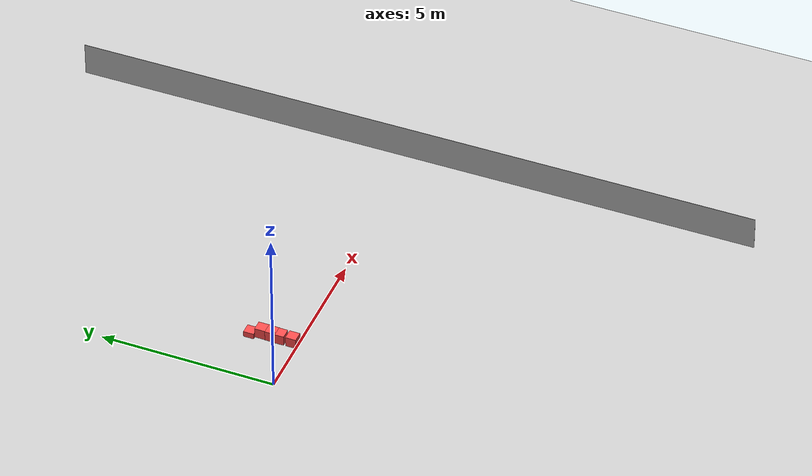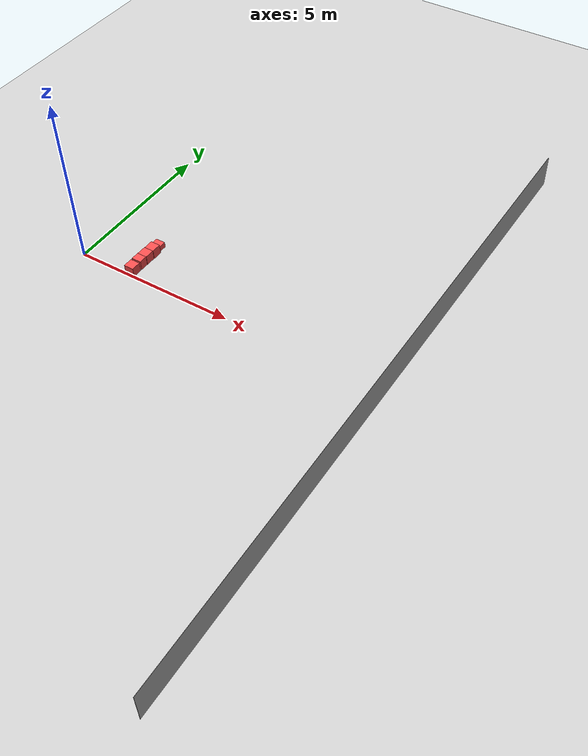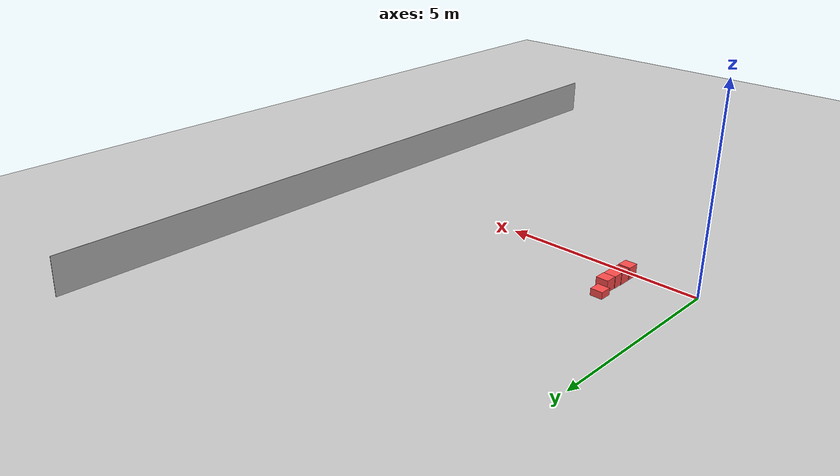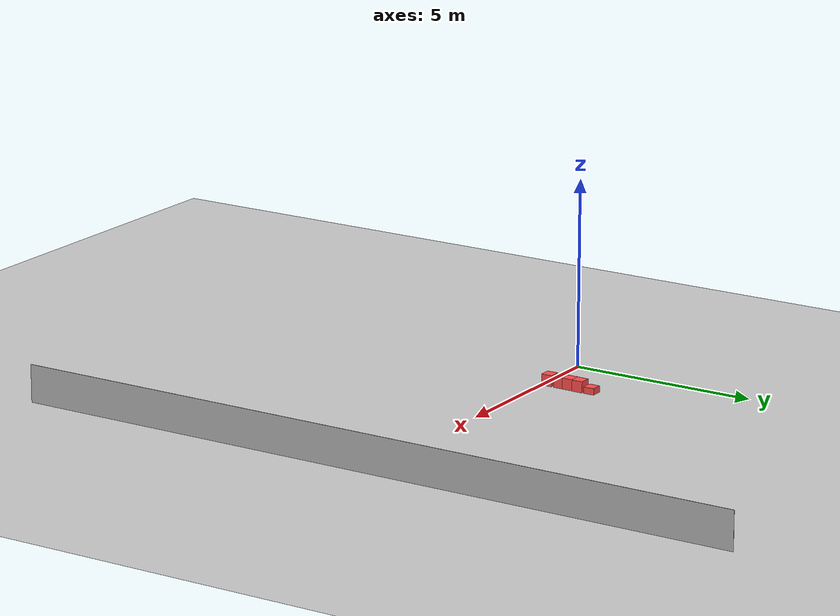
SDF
<sdf version="1.10">
 <world name="default">
  <model name="ground_plane">
   <static>true</static>
   <link name="link">
    <collision name="collision">
     <geometry><plane><normal>0 0 1</normal><size>1 1</size></plane></geometry>
    </collision>
    <visual name="visual">
     <geometry><plane><normal>0 0 1</normal><size>100 100</size></plane></geometry>
     <material>
      <ambient>0.800000012 0.800000012 0.800000012 1</ambient>
      <diffuse>0.800000012 0.800000012 0.800000012 1</diffuse>
      <specular>0.800000012 0.800000012 0.800000012 1</specular>
     </material>
    </visual>
    <inertial>
     <mass>1</mass>
     <inertia><ixx>1</ixx><ixy>0</ixy><ixz>0</ixz><iyy>1</iyy><iyz>0</iyz><izz>1</izz></inertia>
    </inertial>
   </link>
  </model>
  <model name="wall_2">
   <pose>10 0 .5 0 0 -1.57</pose>
   <static>true</static>
   <link name="link">
    <collision name="collision"><geometry><box><size>20 .01 1</size></box></geometry></collision>
    <visual name="visual">
     <geometry><box><size>20 .01 1</size></box></geometry>
     <material>
      <ambient>0.7 0.7 0.7 1</ambient>
      <diffuse>0.7 0.7 0.7 1</diffuse>
      <specular>0.7 0.7 0.7 1</specular>
     </material>
    </visual>
    <inertial>
     <mass>1</mass>
     <inertia><ixx>1</ixx><ixy>0</ixy><ixz>0</ixz><iyy>1</iyy><iyz>0</iyz><izz>1</izz></inertia>
    </inertial>
   </link>
  </model>
  <model name="Box_Red">
   <link name="link_0">
    <inertial>
     <mass>1</mass>
     <inertia>
      <ixx>0.166667</ixx>
      <ixy>0</ixy>
      <ixz>0</ixz>
      <iyy>0.166667</iyy>
      <iyz>0</iyz>
      <izz>0.166667</izz>
     </inertia>
    </inertial>
    <visual name="visual">
     <geometry><box><size>0.3 0.3 0.3</size></box></geometry>
     <material>
      <lighting>1</lighting>
      <script><uri>file://media/materials/scripts/gazebo.material</uri><name>Gazebo/Grey</name></script>
      <ambient>1 0.3 0.3 1</ambient>
      <diffuse>0.7 0.7 0.7 1</diffuse>
      <specular>0.01 0.01 0.01 1</specular>
      <emissive>0 0 0 1</emissive>
      <shader type="vertex"><normal_map>__default__</normal_map></shader>
     </material>
    </visual>
    <collision name="collision">
     <geometry><box><size>0.3 0.3 0.3</size></box></geometry>
     <surface>
      <friction>
       <ode><mu>1</mu><mu2>1</mu2><fdir1>0 0 0</fdir1><slip1>0</slip1><slip2>0</slip2></ode>
       <torsional>
        <coefficient>1</coefficient>
        <patch_radius>0</patch_radius>
        <surface_radius>0</surface_radius>
        <use_patch_radius>1</use_patch_radius>
        <ode><slip>0</slip></ode>
       </torsional>
      </friction>
      <bounce><restitution_coefficient>0</restitution_coefficient><threshold>1e+06</threshold></bounce>
      <contact>
       <collide_without_contact>0</collide_without_contact>
       <collide_without_contact_bitmask>1</collide_without_contact_bitmask>
       <collide_bitmask>1</collide_bitmask>
       <ode>
        <soft_cfm>0</soft_cfm>
        <soft_erp>0.2</soft_erp>
        <kp>1e+13</kp>
        <kd>1</kd>
        <max_vel>0.01</max_vel>
        <min_depth>0</min_depth>
       </ode>
       <bullet>
        <split_impulse>1</split_impulse>
        <split_impulse_penetration_threshold>-0.01</split_impulse_penetration_threshold>
        <soft_cfm>0</soft_cfm>
        <soft_erp>0.2</soft_erp>
        <kp>1e+13</kp>
        <kd>1</kd>
       </bullet>
      </contact>
     </surface>
    </collision>
   </link>
   <static>0</static>
   <pose>1.62991 1.35831 0 0 -0 0</pose>
  </model>
  <model name="Box_Red_clone">
   <link name="link_0">
    <inertial>
     <mass>1</mass>
     <inertia>
      <ixx>0.166667</ixx>
      <ixy>0</ixy>
      <ixz>0</ixz>
      <iyy>0.166667</iyy>
      <iyz>0</iyz>
      <izz>0.166667</izz>
     </inertia>
    </inertial>
    <visual name="visual">
     <geometry><box><size>0.3 0.3 0.3</size></box></geometry>
     <material>
      <lighting>1</lighting>
      <script><uri>file://media/materials/scripts/gazebo.material</uri><name>Gazebo/Grey</name></script>
      <ambient>1 0.3 0.3 1</ambient>
      <diffuse>0.7 0.7 0.7 1</diffuse>
      <specular>0.01 0.01 0.01 1</specular>
      <emissive>0 0 0 1</emissive>
      <shader type="vertex"><normal_map>__default__</normal_map></shader>
     </material>
    </visual>
    <collision name="collision">
     <geometry><box><size>0.3 0.3 0.3</size></box></geometry>
     <surface>
      <friction>
       <ode><mu>1</mu><mu2>1</mu2><fdir1>0 0 0</fdir1><slip1>0</slip1><slip2>0</slip2></ode>
       <torsional>
        <coefficient>1</coefficient>
        <patch_radius>0</patch_radius>
        <surface_radius>0</surface_radius>
        <use_patch_radius>1</use_patch_radius>
        <ode><slip>0</slip></ode>
       </torsional>
      </friction>
      <bounce><restitution_coefficient>0</restitution_coefficient><threshold>1e+06</threshold></bounce>
      <contact>
       <collide_without_contact>0</collide_without_contact>
       <collide_without_contact_bitmask>1</collide_without_contact_bitmask>
       <collide_bitmask>1</collide_bitmask>
       <ode>
        <soft_cfm>0</soft_cfm>
        <soft_erp>0.2</soft_erp>
        <kp>1e+13</kp>
        <kd>1</kd>
        <max_vel>0.01</max_vel>
        <min_depth>0</min_depth>
       </ode>
       <bullet>
        <split_impulse>1</split_impulse>
        <split_impulse_penetration_threshold>-0.01</split_impulse_penetration_threshold>
        <soft_cfm>0</soft_cfm>
        <soft_erp>0.2</soft_erp>
        <kp>1e+13</kp>
        <kd>1</kd>
       </bullet>
      </contact>
     </surface>
    </collision>
   </link>
   <static>0</static>
   <pose>1.69497 1.05811 0.149998 -7e-06 5e-06 9e-06</pose>
  </model>
  <model name="Box_Red_clone_0">
   <link name="link_0">
    <inertial>
     <mass>1</mass>
     <inertia>
      <ixx>0.166667</ixx>
      <ixy>0</ixy>
      <ixz>0</ixz>
      <iyy>0.166667</iyy>
      <iyz>0</iyz>
      <izz>0.166667</izz>
     </inertia>
    </inertial>
    <visual name="visual">
     <geometry><box><size>0.3 0.3 0.3</size></box></geometry>
     <material>
      <lighting>1</lighting>
      <script><uri>file://media/materials/scripts/gazebo.material</uri><name>Gazebo/Grey</name></script>
      <ambient>1 0.3 0.3 1</ambient>
      <diffuse>0.7 0.7 0.7 1</diffuse>
      <specular>0.01 0.01 0.01 1</specular>
      <emissive>0 0 0 1</emissive>
      <shader type="vertex"><normal_map>__default__</normal_map></shader>
     </material>
    </visual>
    <collision name="collision">
     <geometry><box><size>0.3 0.3 0.3</size></box></geometry>
     <surface>
      <friction>
       <ode><mu>1</mu><mu2>1</mu2><fdir1>0 0 0</fdir1><slip1>0</slip1><slip2>0</slip2></ode>
       <torsional>
        <coefficient>1</coefficient>
        <patch_radius>0</patch_radius>
        <surface_radius>0</surface_radius>
        <use_patch_radius>1</use_patch_radius>
        <ode><slip>0</slip></ode>
       </torsional>
      </friction>
      <bounce><restitution_coefficient>0</restitution_coefficient><threshold>1e+06</threshold></bounce>
      <contact>
       <collide_without_contact>0</collide_without_contact>
       <collide_without_contact_bitmask>1</collide_without_contact_bitmask>
       <collide_bitmask>1</collide_bitmask>
       <ode>
        <soft_cfm>0</soft_cfm>
        <soft_erp>0.2</soft_erp>
        <kp>1e+13</kp>
        <kd>1</kd>
        <max_vel>0.01</max_vel>
        <min_depth>0</min_depth>
       </ode>
       <bullet>
        <split_impulse>1</split_impulse>
        <split_impulse_penetration_threshold>-0.01</split_impulse_penetration_threshold>
        <soft_cfm>0</soft_cfm>
        <soft_erp>0.2</soft_erp>
        <kp>1e+13</kp>
        <kd>1</kd>
       </bullet>
      </contact>
     </surface>
    </collision>
   </link>
   <static>0</static>
   <pose>1.68581 0.758813 0.149998 -7e-06 5e-06 9e-06</pose>
  </model>
  <model name="Box_Red_clone_1">
   <link name="link_0">
    <inertial>
     <mass>1</mass>
     <inertia>
      <ixx>0.166667</ixx>
      <ixy>0</ixy>
      <ixz>0</ixz>
      <iyy>0.166667</iyy>
      <iyz>0</iyz>
      <izz>0.166667</izz>
     </inertia>
    </inertial>
    <visual name="visual">
     <geometry><box><size>0.3 0.3 0.3</size></box></geometry>
     <material>
      <lighting>1</lighting>
      <script><uri>file://media/materials/scripts/gazebo.material</uri><name>Gazebo/Grey</name></script>
      <ambient>1 0.3 0.3 1</ambient>
      <diffuse>0.7 0.7 0.7 1</diffuse>
      <specular>0.01 0.01 0.01 1</specular>
      <emissive>0 0 0 1</emissive>
      <shader type="vertex"><normal_map>__default__</normal_map></shader>
     </material>
    </visual>
    <collision name="collision">
     <geometry><box><size>0.3 0.3 0.3</size></box></geometry>
     <surface>
      <friction>
       <ode><mu>1</mu><mu2>1</mu2><fdir1>0 0 0</fdir1><slip1>0</slip1><slip2>0</slip2></ode>
       <torsional>
        <coefficient>1</coefficient>
        <patch_radius>0</patch_radius>
        <surface_radius>0</surface_radius>
        <use_patch_radius>1</use_patch_radius>
        <ode><slip>0</slip></ode>
       </torsional>
      </friction>
      <bounce><restitution_coefficient>0</restitution_coefficient><threshold>1e+06</threshold></bounce>
      <contact>
       <collide_without_contact>0</collide_without_contact>
       <collide_without_contact_bitmask>1</collide_without_contact_bitmask>
       <collide_bitmask>1</collide_bitmask>
       <ode>
        <soft_cfm>0</soft_cfm>
        <soft_erp>0.2</soft_erp>
        <kp>1e+13</kp>
        <kd>1</kd>
        <max_vel>0.01</max_vel>
        <min_depth>0</min_depth>
       </ode>
       <bullet>
        <split_impulse>1</split_impulse>
        <split_impulse_penetration_threshold>-0.01</split_impulse_penetration_threshold>
        <soft_cfm>0</soft_cfm>
        <soft_erp>0.2</soft_erp>
        <kp>1e+13</kp>
        <kd>1</kd>
       </bullet>
      </contact>
     </surface>
    </collision>
   </link>
   <static>0</static>
   <pose>1.67673 0.503162 0.149998 -7e-06 5e-06 9e-06</pose>
  </model>
  <model name="Box_Red_clone_2">
   <link name="link_0">
    <inertial>
     <mass>1</mass>
     <inertia>
      <ixx>0.166667</ixx>
      <ixy>0</ixy>
      <ixz>0</ixz>
      <iyy>0.166667</iyy>
      <iyz>0</iyz>
      <izz>0.166667</izz>
     </inertia>
    </inertial>
    <visual name="visual">
     <geometry><box><size>0.3 0.3 0.3</size></box></geometry>
     <material>
      <lighting>1</lighting>
      <script><uri>file://media/materials/scripts/gazebo.material</uri><name>Gazebo/Grey</name></script>
      <ambient>1 0.3 0.3 1</ambient>
      <diffuse>0.7 0.7 0.7 1</diffuse>
      <specular>0.01 0.01 0.01 1</specular>
      <emissive>0 0 0 1</emissive>
      <shader type="vertex"><normal_map>__default__</normal_map></shader>
     </material>
    </visual>
    <collision name="collision">
     <geometry><box><size>0.3 0.3 0.3</size></box></geometry>
     <surface>
      <friction>
       <ode><mu>1</mu><mu2>1</mu2><fdir1>0 0 0</fdir1><slip1>0</slip1><slip2>0</slip2></ode>
       <torsional>
        <coefficient>1</coefficient>
        <patch_radius>0</patch_radius>
        <surface_radius>0</surface_radius>
        <use_patch_radius>1</use_patch_radius>
        <ode><slip>0</slip></ode>
       </torsional>
      </friction>
      <bounce><restitution_coefficient>0</restitution_coefficient><threshold>1e+06</threshold></bounce>
      <contact>
       <collide_without_contact>0</collide_without_contact>
       <collide_without_contact_bitmask>1</collide_without_contact_bitmask>
       <collide_bitmask>1</collide_bitmask>
       <ode>
        <soft_cfm>0</soft_cfm>
        <soft_erp>0.2</soft_erp>
        <kp>1e+13</kp>
        <kd>1</kd>
        <max_vel>0.01</max_vel>
        <min_depth>0</min_depth>
       </ode>
       <bullet>
        <split_impulse>1</split_impulse>
        <split_impulse_penetration_threshold>-0.01</split_impulse_penetration_threshold>
        <soft_cfm>0</soft_cfm>
        <soft_erp>0.2</soft_erp>
        <kp>1e+13</kp>
        <kd>1</kd>
       </bullet>
      </contact>
     </surface>
    </collision>
   </link>
   <static>0</static>
   <pose>1.68024 0.153458 0.149998 -7e-06 5e-06 9e-06</pose>
  </model>
 </world>
</sdf>
